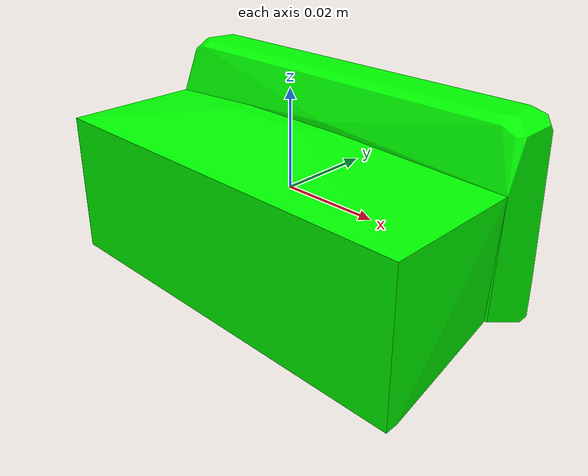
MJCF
<mujoco model="shapenetsem23">
  <asset>
    <mesh file="meshes/shapenetsem23/shapenetsem23_0.stl" name="shapenetsem23_0" scale="1 1 1"/>
    <mesh file="meshes/shapenetsem23/shapenetsem23_1.stl" name="shapenetsem23_1" scale="1 1 1"/>
  </asset>
  <worldbody>
    <body>
      <body name="collision">
        <geom pos="0 0 0" mesh="shapenetsem23_0" type="mesh" solimp="0.998 0.998 0.001" solref="0.001 1" density="100" friction="0.95 0.3 0.1" rgba="0 1 0 1" group="1" condim="4"/>
        <geom pos="0 0 0" mesh="shapenetsem23_1" type="mesh" solimp="0.998 0.998 0.001" solref="0.001 1" density="100" friction="0.95 0.3 0.1" rgba="0 1 0 1" group="1" condim="4"/>
      </body>
      <body name="visual">
        <geom pos="0 0 0" mesh="shapenetsem23_0" type="mesh" rgba="0 1 0 1" conaffinity="0" contype="0" group="0" mass="0.0001"/>
        <geom pos="0 0 0" mesh="shapenetsem23_1" type="mesh" rgba="0 1 0 1" conaffinity="0" contype="0" group="0" mass="0.0001"/>
      </body>
      <site rgba="0 0 0 0" size="0.005" pos="0 0 -0.06" name="bottom_site"/>
      <site rgba="0 0 0 0" size="0.005" pos="0 0 0.04" name="top_site"/>
      <site rgba="0 0 0 0" size="0.005" pos="0.025 0.025 0" name="horizontal_radius_site"/>
    </body>
  </worldbody>
</mujoco>
